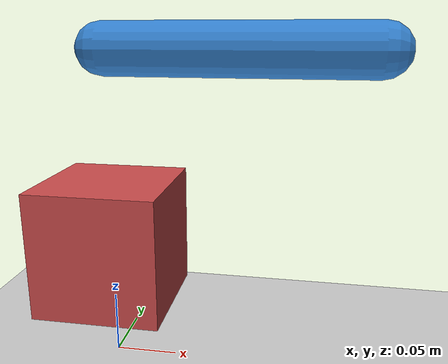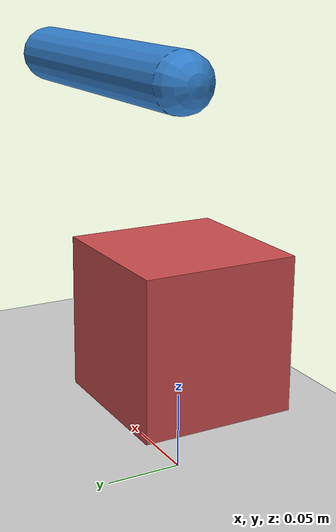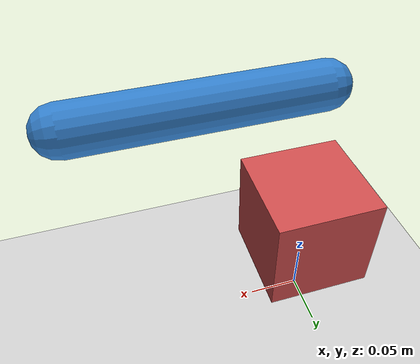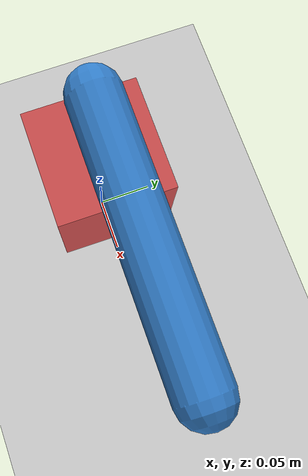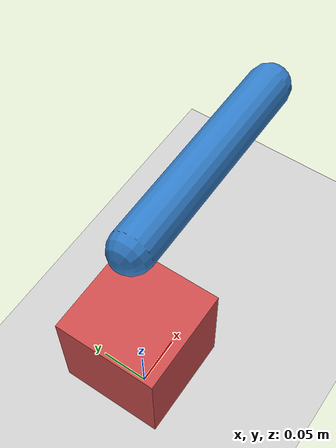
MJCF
<mujoco model="my_robot">
    <compiler angle="degree"/>
    <!-- viscosity: global damping (like air resistance) -->
    <option timestep="0.01" gravity="0 0 -9.8" viscosity="0.002" />

    <worldbody>
        <geom name="floor" type="plane" size="10 10  0.1" rgba="0.8 0.8 0.8 1"  pos="0 0 0" friction="100.0 0.005 0.0001" contype="1" conaffinity="1"/>
        <body name="box" pos="0 0 0.1">
            <geom type="box" size="0.05 0.05 0.05" rgba="0.8 0.3 0.3 1" mass="1.0" friction="1.0 0.005 0.0001" contype="1" conaffinity="1"/>
            <joint name="slide" type="slide" axis="1 0 0" damping="0.0" frictionloss="0.0"/>
            <!-- Child body: rotor attached to slider -->
            <body name="rotor" pos="0 0 0.15"> <!-- offset relative to slider -->
                <!-- damping: viscous resistance proportional to velocity
                frictionloss: static Coulomb friction — acts like torque deadzone
                No movement if torque < frictionloss × gear -->
                <geom type="capsule" fromto="0 0 0 0.2 0 0" size="0.02" rgba="0.2 0.5 0.8 1" mass="0.01" />
                <joint name="hinge" type="hinge" axis="0 0 1" damping="0.1" frictionloss="0.02"/>
            </body>
        </body>

    </worldbody>

    <actuator>
        <motor joint="slide" ctrlrange="-1 1" gear="20"/>
        <motor joint="hinge" ctrlrange="-1 1" gear="10"/>
    </actuator>
</mujoco>
